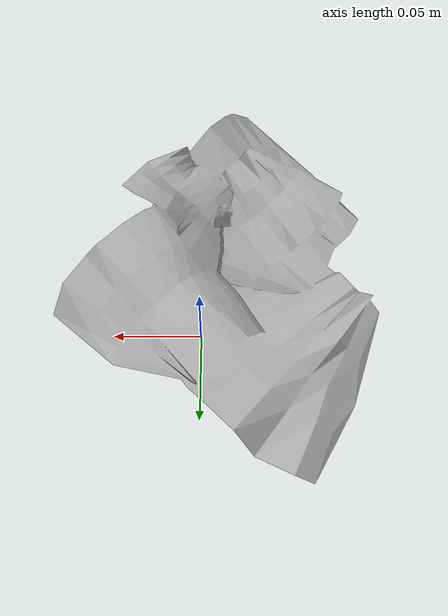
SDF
<?xml version="1.0" ?>
<sdf version="1.5">
	<model name="cotton1">
      <pose>0 0 0  0 0 0</pose>
      <static>true</static>
      <link name="body">
		<collision name="collision">
		    <geometry>
		      <mesh>
		        <uri>model://cotton1/cotton1.dae</uri>
		      </mesh>
		    </geometry>
      	</collision>
        <visual name="visual">
          <geometry>
            <mesh><uri>model://cotton1/cotton1.dae</uri></mesh>
          </geometry>
        </visual>
      </link>
    </model>
</sdf>
